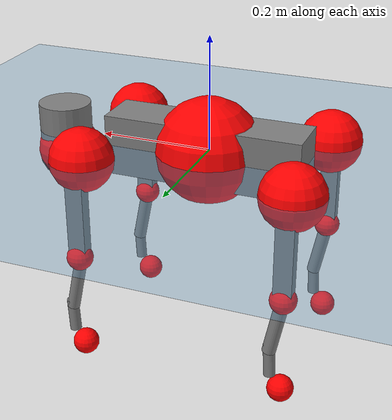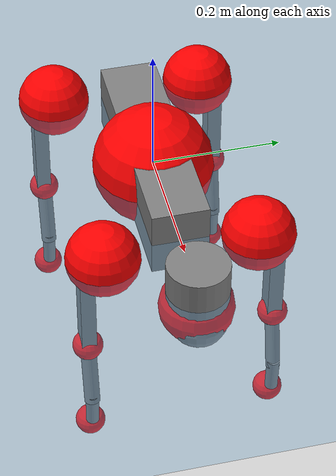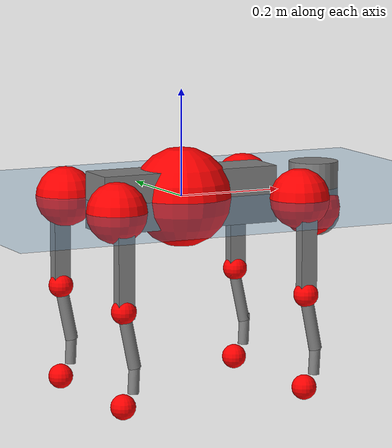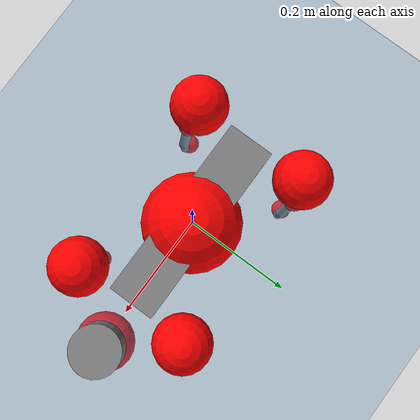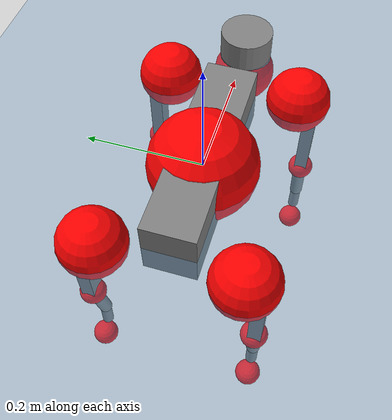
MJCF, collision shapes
<mujoco model="go2">
  <compiler angle="radian" assetdir="assets" balanceinertia="true" inertiafromgeom="false"/>

  <option timestep="0.005" density="1.2" viscosity="2e-05"/>

  <size nkey="1"/>

  <visual>
    <quality shadowsize="8192"/>
    <map shadowclip="0.5"/>
  </visual>

  <default>
    <default class="/">
      <geom contype="0" conaffinity="0" group="1" solref="-1000 -80"/>
      <site size="0.01 0.005 0.005" group="5"/>
      <general forcelimited="true" biastype="affine" gainprm="20" biasprm="0 -20 -0.5"/>
      <default class="go2">
        <joint armature="0.01" damping="0.01" frictionloss="0.2"/>
        <geom condim="1" margin="0.001"/>
        <default class="visual">
          <geom type="mesh" group="2"/>
        </default>
        <default class="collision">
          <geom group="3"/>
          <default class="foot">
            <geom size="0.022 0 0" condim="6" priority="1" friction="0.8 0.02 0.01" solimp="0.015 1 0.022"/>
          </default>
        </default>
        <default class="reward_collision_sphere">
          <geom group="5" rgba="1 0 0 1"/>
        </default>
      </default>
    </default>
  </default>

  <asset>
    <texture type="skybox" colorspace="auto" name="//unnamed_texture_0" builtin="gradient" rgb1="0.95 0.95 0.95" rgb2="0.95 0.95 0.95" width="100" height="600"/>
    <texture type="2d" colorspace="auto" name="texplane" builtin="checker" rgb1="0.345 0.575 0.748" rgb2="0.345 0.575 0.748" markrgb="1 1 1" width="512" height="512"/>
    <material name="MatPlane" class="/" texture="texplane" texuniform="true" texrepeat="2 2" specular="0.9"/>
    <material name="metal" class="/" rgba="0.9 0.95 0.95 1"/>
    <material name="black" class="/" rgba="0 0 0 1"/>
    <material name="white" class="/"/>
    <material name="gray" class="/" rgba="0.671705 0.692426 0.77427 1"/>
    <mesh name="base_0" class="/" file="base_0.obj"/>
    <mesh name="base_1" class="/" file="base_1.obj"/>
    <mesh name="base_2" class="/" file="base_2.obj"/>
    <mesh name="base_3" class="/" file="base_3.obj"/>
    <mesh name="base_4" class="/" file="base_4.obj"/>
    <mesh name="hip_0" class="/" file="hip_0.obj"/>
    <mesh name="hip_1" class="/" file="hip_1.obj"/>
    <mesh name="thigh_0" class="/" file="thigh_0.obj"/>
    <mesh name="thigh_1" class="/" file="thigh_1.obj"/>
    <mesh name="thigh_mirror_0" class="/" file="thigh_mirror_0.obj"/>
    <mesh name="thigh_mirror_1" class="/" file="thigh_mirror_1.obj"/>
    <mesh name="calf_0" class="/" file="calf_0.obj"/>
    <mesh name="calf_1" class="/" file="calf_1.obj"/>
    <mesh name="calf_mirror_0" class="/" file="calf_mirror_0.obj"/>
    <mesh name="calf_mirror_1" class="/" file="calf_mirror_1.obj"/>
    <mesh name="foot" class="/" file="foot.obj"/>
  </asset>

  <worldbody>
    <geom name="floor" class="/" size="100 100 0.125" type="plane" group="0" material="MatPlane"/>
    <light name="toplight_shadow" class="/" pos="0 0 5" dir="0.0990148 0.0990148 -0.990148" type="directional" ambient="0.04 0.04 0.04" diffuse="0.55 0.55 0.55" specular="0.12 0.12 0.12"/>
    <light name="toplight_fill" class="/" pos="0 0 5" dir="0.0990148 0.0990148 -0.990148" type="directional" castshadow="false" ambient="0.04 0.04 0.04" diffuse="0.3 0.3 0.3" specular="0.08 0.08 0.08"/>
    <body name="trunk" childclass="go2" pos="0.00106516 9.21889e-05 -0.000761665" quat="1 -4.91479e-05 1.17317e-05 -4.12672e-05">
      <inertial pos="0.0175976 -0.00262082 -0.00404714" quat="-0.00139639 0.711619 0.00260439 0.70256" mass="5.81321" diaginertia="0.091094 0.102006 0.00902254"/>
      <joint name="//unnamed_joint_0" type="free" armature="0" damping="0" frictionloss="0"/>
      <geom name="//unnamed_geom_1" class="visual" material="black" mesh="base_0"/>
      <geom name="//unnamed_geom_2" class="visual" material="black" mesh="base_1"/>
      <geom name="//unnamed_geom_3" class="visual" material="black" mesh="base_2"/>
      <geom name="//unnamed_geom_4" class="visual" material="white" mesh="base_3"/>
      <geom name="//unnamed_geom_5" class="visual" material="gray" mesh="base_4"/>
      <geom name="trunk_1" class="collision" size="0.175226 0.0435502 0.0530987" type="box"/>
      <geom name="trunk_2" class="collision" size="0.0465778 0.04192" pos="0.275758 0 0.00820122" type="cylinder"/>
      <geom name="trunk_3" class="collision" size="0.0437831" pos="0.283498 0 -0.0492073"/>
      <geom name="//unnamed_geom_9" class="reward_collision_sphere" size="0.0931555"/>
      <geom name="//unnamed_geom_10" class="reward_collision_sphere" size="0.0558933" pos="0.27092 0 -0.0369055"/>
      <site name="imu" pos="-0.0115775 0.000322965 0.0215724" size="0.00931555"/>
      <camera name="track" pos="0 -2.01395 0" quat="0.707107 0.707107 0 0" mode="trackcom"/>
      <camera name="ego_camera" pos="0.301882 0 0.0369055" quat="-0.5 -0.5 0.5 0.5"/>
      <body name="FL_hip" pos="0.184322 0.0447695 -0.000567868" quat="1 -5.37036e-05 -0.000193788 0.00027345">
        <inertial pos="-0.00507095 0.000448741 -0.000765302" quat="0.497101 0.499548 0.505005 0.498309" mass="0.532376" diaginertia="0.000724437 0.000580432 0.000172712"/>
        <joint name="FL_hip_joint" pos="0 0 0" axis="0.999995 -0.00310118 -0.000718309" range="-1.0507 1.0416" armature="0.00955428" damping="0.008027" frictionloss="0.17351"/>
        <geom name="//unnamed_geom_11" class="visual" material="metal" mesh="hip_0"/>
        <geom name="//unnamed_geom_12" class="visual" material="gray" mesh="hip_1"/>
        <geom name="//unnamed_geom_13" class="collision" size="0.0428515 0.0186311" pos="0 0.0805578 0" quat="0.707107 0.707107 0 0" type="cylinder"/>
        <geom name="//unnamed_geom_14" class="reward_collision_sphere" size="0.0558933" pos="0 0.0704881 0"/>
        <body name="FL_thigh" pos="-0.00165246 0.0982214 0.00211416" quat="0.999999 -0.000177309 -0.000775394 -0.000942504">
          <inertial pos="-0.00353623 -0.022029 -0.0261494" quat="0.834709 0.082122 -0.0234797 0.544027" mass="0.90963" diaginertia="0.00502176 0.00582714 0.000321034"/>
          <joint name="FL_thigh_joint" pos="0 0 0" axis="0.00488347 0.999976 0.00496421" stiffness="0.00630341" range="-1.5183 3.51896" armature="0.00983702" damping="0.0140285" frictionloss="0.17953"/>
          <geom name="//unnamed_geom_15" class="visual" material="metal" mesh="thigh_0"/>
          <geom name="//unnamed_geom_16" class="visual" material="gray" mesh="thigh_1"/>
          <geom name="//unnamed_geom_17" class="collision" size="0.0992106 0.0114116 0.0158364" pos="0 0 -0.087343" quat="0.707107 0 0.707107 0" type="box"/>
          <body name="FL_calf" pos="-0.000289013 0.00149455 -0.174246" quat="1 -0.000150185 0.000352052 -9.1057e-05">
            <inertial pos="0.00644275 -0.00155929 -0.115816" quat="0.710496 0.00176049 -0.00412671 0.703687" mass="0.196184" diaginertia="0.00123941 0.00153263 1.96649e-05"/>
            <joint name="FL_calf_joint" pos="0 0 0" axis="0.00933284 0.999952 -0.00307745" range="-2.69847 -0.839703" armature="0.00894332" damping="0.00182565" frictionloss="0.185735"/>
            <geom name="//unnamed_geom_18" class="visual" material="gray" mesh="calf_0"/>
            <geom name="//unnamed_geom_19" class="visual" material="black" mesh="calf_1"/>
            <geom name="FL_calf0" class="collision" size="0.0111787 0.0558933" pos="0.00774057 0 -0.0492073" quat="0.994493 0 -0.104807 0" type="cylinder"/>
            <geom name="//unnamed_geom_21" class="collision" size="0.0102471 0.0302755" pos="0.0193514 0 -0.121378" quat="0.999688 0 0.0249974 0" type="cylinder"/>
            <geom name="//unnamed_geom_22" class="visual" pos="0 0 -0.174686" quat="1 0 0 0" material="black" mesh="foot"/>
            <geom name="FL_foot" class="foot" size="0.0166072" pos="-0.00193514 0 -0.174686"/>
            <geom name="//unnamed_geom_24" class="reward_collision_sphere" size="0.0232889"/>
            <geom name="//unnamed_geom_25" class="reward_collision_sphere" size="0.0232889" pos="-0.00193514 0 -0.174686"/>
            <site name="FL_foot" class="foot" pos="-0.00193514 0 -0.174686" size="0.00931555"/>
          </body>
        </body>
      </body>
      <body name="FR_hip" pos="0.184987 -0.0474478 0.000562363" quat="1 -3.09441e-05 7.96676e-05 -8.3668e-05">
        <inertial pos="-0.0060626 -0.00437405 -0.00176437" quat="0.487382 0.505146 0.504282 0.502977" mass="0.540761" diaginertia="0.000723492 0.000631734 0.000172342"/>
        <joint name="FR_hip_joint" pos="0 0 0" axis="0.999911 0.0119414 -0.00601362" range="-1.06625 1.05777" armature="0.00928985" damping="0" frictionloss="0.18042"/>
        <geom name="//unnamed_geom_26" class="visual" pos="0 1.62777e-09 6.98183e-08" quat="4.63268e-05 1 0 0" material="metal" mesh="hip_0"/>
        <geom name="//unnamed_geom_27" class="visual" pos="0 2.63881e-09 -1.72687e-07" quat="4.63268e-05 1 0 0" material="gray" mesh="hip_1"/>
        <geom name="//unnamed_geom_28" class="collision" size="0.0428515 0.0186311" pos="0 -0.0805578 0" quat="0.707107 0.707107 0 0" type="cylinder"/>
        <geom name="//unnamed_geom_29" class="reward_collision_sphere" size="0.0558933" pos="0 -0.0704881 0"/>
        <body name="FR_thigh" pos="0.000996088 -0.0974556 -0.00207679" quat="0.999999 4.0653e-05 0.00112365 0.000271633">
          <inertial pos="-0.000979016 0.0234585 -0.0275207" quat="0.552518 -0.0181991 0.0884746 0.828592" mass="0.965852" diaginertia="0.00502734 0.00593892 0.000340483"/>
          <joint name="FR_thigh_joint" pos="0 0 0" axis="-0.0020145 -0.99999 -0.00400424" stiffness="0.000522314" range="-3.50726 1.59117" armature="0.00878155" damping="0.0098557" frictionloss="0.183555"/>
          <geom name="//unnamed_geom_30" class="visual" material="metal" mesh="thigh_mirror_0"/>
          <geom name="//unnamed_geom_31" class="visual" material="gray" mesh="thigh_mirror_1"/>
          <geom name="//unnamed_geom_32" class="collision" size="0.0992106 0.0114116 0.0158364" pos="0 0 -0.087343" quat="0.707107 0 0.707107 0" type="box"/>
          <body name="FR_calf" pos="-0.000670765 0.000238936 -0.173733" quat="1 2.32163e-06 0.000434501 -9.45232e-05">
            <inertial pos="0.00409344 0.000729635 -0.116068" quat="0.710931 -0.0126934 0.000986519 0.703146" mass="0.202229" diaginertia="0.00129018 0.00155561 2.015e-05"/>
            <joint name="FR_calf_joint" pos="0 0 0" axis="0.00350104 -0.999989 -0.00324235" range="0.783921 2.705" armature="0.0104182" damping="0.0206696" frictionloss="0.185368"/>
            <geom name="//unnamed_geom_33" class="visual" material="gray" mesh="calf_mirror_0"/>
            <geom name="//unnamed_geom_34" class="visual" material="black" mesh="calf_mirror_1"/>
            <geom name="FR_calf0" class="collision" size="0.0121102 0.0558933" pos="0.00967571 0 -0.0492073" quat="0.995004 0 -0.0998334 0" type="cylinder"/>
            <geom name="//unnamed_geom_36" class="collision" size="0.0102471 0.0302755" pos="0.0193514 0 -0.121378" quat="0.999688 0 0.0249974 0" type="cylinder"/>
            <geom name="//unnamed_geom_37" class="visual" pos="0 0 -0.174686" quat="1 0 0 0" material="black" mesh="foot"/>
            <geom name="FR_foot" class="foot" size="0.0210196" pos="-0.00193514 0 -0.174686"/>
            <geom name="//unnamed_geom_39" class="reward_collision_sphere" size="0.0232889"/>
            <geom name="//unnamed_geom_40" class="reward_collision_sphere" size="0.0232889" pos="-0.00193514 0 -0.174686"/>
            <site name="FR_foot" class="foot" pos="-0.00193514 0 -0.174686" size="0.00931555"/>
          </body>
        </body>
      </body>
      <body name="RL_hip" pos="-0.184543 0.046032 -0.00307901" quat="1 -1.69903e-07 8.82213e-05 5.54485e-06">
        <inertial pos="0.0049881 0.00375197 -0.00198523" quat="0.496741 0.50327 0.497234 0.502719" mass="0.566127" diaginertia="0.000799727 0.000645735 0.000182823"/>
        <joint name="RL_hip_joint" pos="0 0 0" axis="-0.999918 -0.00938449 0.00871372" range="-1.04656 1.02945" armature="0.00940178" damping="0" frictionloss="0.186563"/>
        <geom name="//unnamed_geom_41" class="visual" pos="-1.28452e-09 0 -2.51795e-07" quat="4.63268e-05 0 1 0" material="metal" mesh="hip_0"/>
        <geom name="//unnamed_geom_42" class="visual" pos="-2.08236e-09 0 -2.23306e-07" quat="4.63268e-05 0 1 0" material="gray" mesh="hip_1"/>
        <geom name="//unnamed_geom_43" class="collision" size="0.0428515 0.0186311" pos="0 0.0805578 0" quat="0.707107 0.707107 0 0" type="cylinder"/>
        <geom name="//unnamed_geom_44" class="reward_collision_sphere" size="0.0558933" pos="0 0.0704881 0"/>
        <body name="RL_thigh" pos="8.2352e-05 0.0967989 0.000228201" quat="1 -0.000150003 -0.000129315 0.000228084">
          <inertial pos="-0.00614552 -0.0230323 -0.0295776" quat="0.829399 0.0844064 -0.0211266 0.551839" mass="0.917118" diaginertia="0.00477915 0.00604408 0.000316951"/>
          <joint name="RL_thigh_joint" pos="0 0 0" axis="0.00198121 0.999952 -0.00963318" stiffness="0.014923" range="-0.527604 4.50986" armature="0.00887683" damping="0" frictionloss="0.184422"/>
          <geom name="//unnamed_geom_45" class="visual" material="metal" mesh="thigh_0"/>
          <geom name="//unnamed_geom_46" class="visual" material="gray" mesh="thigh_1"/>
          <geom name="//unnamed_geom_47" class="collision" size="0.0992106 0.0114116 0.0158364" pos="0 0 -0.087343" quat="0.707107 0 0.707107 0" type="box"/>
          <body name="RL_calf" pos="0.000272153 -0.00028717 -0.173912" quat="1 -0.000109988 1.33295e-05 -3.92287e-05">
            <inertial pos="0.00634154 0.00202369 -0.115029" quat="0.713818 0.0045926 -0.00589887 0.700291" mass="0.201111" diaginertia="0.00128143 0.00161232 2.01153e-05"/>
            <joint name="RL_calf_joint" pos="0 0 0" axis="0.00626275 0.999923 -0.0106691" stiffness="0.00123064" range="-2.67364 -0.86927" armature="0.0105403" damping="0.0154205" frictionloss="0.165326"/>
            <geom name="//unnamed_geom_48" class="visual" material="gray" mesh="calf_0"/>
            <geom name="//unnamed_geom_49" class="visual" material="black" mesh="calf_1"/>
            <geom name="RL_calf0" class="collision" size="0.0121102 0.0558933" pos="0.00967571 0 -0.0492073" quat="0.995004 0 -0.0998334 0" type="cylinder"/>
            <geom name="//unnamed_geom_51" class="collision" size="0.0102471 0.0302755" pos="0.0193514 0 -0.121378" quat="0.999688 0 0.0249974 0" type="cylinder"/>
            <geom name="//unnamed_geom_52" class="visual" pos="0 0 -0.174686" quat="1 0 0 0" material="black" mesh="foot"/>
            <geom name="RL_foot" class="foot" size="0.0180561" pos="-0.00193514 0 -0.174686"/>
            <geom name="//unnamed_geom_54" class="reward_collision_sphere" size="0.0232889"/>
            <geom name="//unnamed_geom_55" class="reward_collision_sphere" size="0.0232889" pos="-0.00193514 0 -0.174686"/>
            <site name="RL_foot" class="foot" pos="-0.00193514 0 -0.174686" size="0.00931555"/>
          </body>
        </body>
      </body>
      <body name="RR_hip" pos="-0.184541 -0.0478751 -0.00102828" quat="1 -9.59694e-05 0.00040003 -6.76466e-05">
        <inertial pos="0.0042374 -0.00137588 -0.00282886" quat="0.498155 0.490889 0.494445 0.516133" mass="0.54497" diaginertia="0.0007265 0.000595991 0.000171711"/>
        <joint name="RR_hip_joint" pos="0 0 0" axis="-0.999909 0.00784023 -0.0109611" stiffness="0.00363701" range="-1.09656 1.05231" armature="0.00948042" damping="0.00368384" frictionloss="0.185128"/>
        <geom name="//unnamed_geom_56" class="visual" pos="1.28588e-09 1.62777e-09 -3.21613e-07" quat="2.14617e-09 4.63268e-05 4.63268e-05 -1" material="metal" mesh="hip_0"/>
        <geom name="//unnamed_geom_57" class="visual" pos="2.07898e-09 2.63881e-09 -5.06188e-08" quat="2.14617e-09 4.63268e-05 4.63268e-05 -1" material="gray" mesh="hip_1"/>
        <geom name="//unnamed_geom_58" class="collision" size="0.0428515 0.0186311" pos="0 -0.0805578 0" quat="0.707107 0.707107 0 0" type="cylinder"/>
        <geom name="//unnamed_geom_59" class="reward_collision_sphere" size="0.0558933" pos="0 -0.0704881 0"/>
        <body name="RR_thigh" pos="0.00270741 -0.0962466 -0.00186761" quat="0.999999 -0.00019615 0.000235051 -0.00106528">
          <inertial pos="-0.00333762 0.0233298 -0.0279705" quat="0.551492 -0.0197234 0.0853932 0.829563" mass="0.896353" diaginertia="0.00485382 0.00593961 0.000322639"/>
          <joint name="RR_thigh_joint" pos="0 0 0" axis="0.00314058 -0.999993 -0.00202951" stiffness="0.00302934" range="-4.52099 0.544994" armature="0.00967438" damping="0.0133662" frictionloss="0.189144"/>
          <geom name="//unnamed_geom_60" class="visual" material="metal" mesh="thigh_mirror_0"/>
          <geom name="//unnamed_geom_61" class="visual" material="gray" mesh="thigh_mirror_1"/>
          <geom name="//unnamed_geom_62" class="collision" size="0.0992106 0.0114116 0.0158364" pos="0 0 -0.087343" quat="0.707107 0 0.707107 0" type="box"/>
          <body name="RR_calf" pos="-0.00040171 0.00207463 -0.17403" quat="0.999999 -0.000559097 0.000135673 0.00112032">
            <inertial pos="0.00805154 0.000750119 -0.117161" quat="0.699315 -0.0106897 0.00663631 0.714702" mass="0.199063" diaginertia="0.00125697 0.00151706 1.97058e-05"/>
            <joint name="RR_calf_joint" pos="0 0 0" axis="-0.000627078 -0.999999 0.00127516" range="0.833657 2.77745" armature="0.00935026" damping="0.0196344" frictionloss="0.184645"/>
            <geom name="//unnamed_geom_63" class="visual" material="gray" mesh="calf_mirror_0"/>
            <geom name="//unnamed_geom_64" class="visual" material="black" mesh="calf_mirror_1"/>
            <geom name="RR_calf0" class="collision" size="0.0121102 0.0558933" pos="0.00967571 0 -0.0492073" quat="0.995004 0 -0.0998334 0" type="cylinder"/>
            <geom name="//unnamed_geom_66" class="collision" size="0.0102471 0.0302755" pos="0.0193514 0 -0.121378" quat="0.999688 0 0.0249974 0" type="cylinder"/>
            <geom name="//unnamed_geom_67" class="visual" pos="0 0 -0.174686" quat="1 0 0 0" material="black" mesh="foot"/>
            <geom name="RR_foot" class="foot" size="0.0204448" pos="-0.00193514 0 -0.174686"/>
            <geom name="//unnamed_geom_69" class="reward_collision_sphere" size="0.0232889"/>
            <geom name="//unnamed_geom_70" class="reward_collision_sphere" size="0.0232889" pos="-0.00193514 0 -0.174686"/>
            <site name="RR_foot" class="foot" pos="-0.00193514 0 -0.174686" size="0.00931555"/>
          </body>
        </body>
      </body>
    </body>
  </worldbody>

  <contact>
    <pair class="/" geom1="floor" geom2="FL_foot" name="//unnamed_contact_0"/>
    <pair class="/" geom1="floor" geom2="FR_foot" name="//unnamed_contact_1"/>
    <pair class="/" geom1="floor" geom2="RL_foot" name="//unnamed_contact_2"/>
    <pair class="/" geom1="floor" geom2="RR_foot" name="//unnamed_contact_3"/>
  </contact>

  <actuator>
    <general name="FL_hip" class="/" joint="FL_hip_joint" forcerange="-20.3121 20.3121" gainprm="18.4227" biasprm="0 -18.4227 -0.457963"/>
    <general name="FL_thigh" class="/" joint="FL_thigh_joint" forcerange="-19.8912 19.8912" gainprm="18.4227" biasprm="0 -18.4227 -0.457963"/>
    <general name="FL_calf" class="/" joint="FL_calf_joint" forcerange="-43.3257 43.3257" gainprm="18.4227" biasprm="0 -18.4227 -0.457963"/>
    <general name="FR_hip" class="/" joint="FR_hip_joint" forcerange="-22.2859 22.2859" gainprm="18.4227" biasprm="0 -18.4227 -0.457963"/>
    <general name="FR_thigh" class="/" joint="FR_thigh_joint" forcerange="-23.3814 23.3814" gainprm="18.4227" biasprm="0 -18.4227 -0.457963"/>
    <general name="FR_calf" class="/" joint="FR_calf_joint" forcerange="-43.5949 43.5949" gainprm="18.4227" biasprm="0 -18.4227 -0.457963"/>
    <general name="RL_hip" class="/" joint="RL_hip_joint" forcerange="-22.31 22.31" gainprm="18.4227" biasprm="0 -18.4227 -0.457963"/>
    <general name="RL_thigh" class="/" joint="RL_thigh_joint" forcerange="-20.6685 20.6685" gainprm="18.4227" biasprm="0 -18.4227 -0.457963"/>
    <general name="RL_calf" class="/" joint="RL_calf_joint" forcerange="-41.3824 41.3824" gainprm="18.4227" biasprm="0 -18.4227 -0.457963"/>
    <general name="RR_hip" class="/" joint="RR_hip_joint" forcerange="-22.434 22.434" gainprm="18.4227" biasprm="0 -18.4227 -0.457963"/>
    <general name="RR_thigh" class="/" joint="RR_thigh_joint" forcerange="-24.0728 24.0728" gainprm="18.4227" biasprm="0 -18.4227 -0.457963"/>
    <general name="RR_calf" class="/" joint="RR_calf_joint" forcerange="-40.6556 40.6556" gainprm="18.4227" biasprm="0 -18.4227 -0.457963"/>
  </actuator>

  <sensor>
    <gyro site="imu" name="imu_angular_velocity"/>
    <velocimeter site="imu" name="imu_linear_velocity"/>
    <framelinvel objtype="site" objname="FL_foot" name="FL_foot_global_linear_velocity"/>
    <framelinvel objtype="site" objname="FR_foot" name="FR_foot_global_linear_velocity"/>
    <framelinvel objtype="site" objname="RL_foot" name="RL_foot_global_linear_velocity"/>
    <framelinvel objtype="site" objname="RR_foot" name="RR_foot_global_linear_velocity"/>
  </sensor>

  <keyframe>
    <key name="home" qpos="0 0 0.325 1 0 0 0 0.1 0.8 -1.5 -0.1 -0.8 1.5 -0.1 0.8 -1.5 0.1 -0.8 1.5"/>
  </keyframe>
</mujoco>
